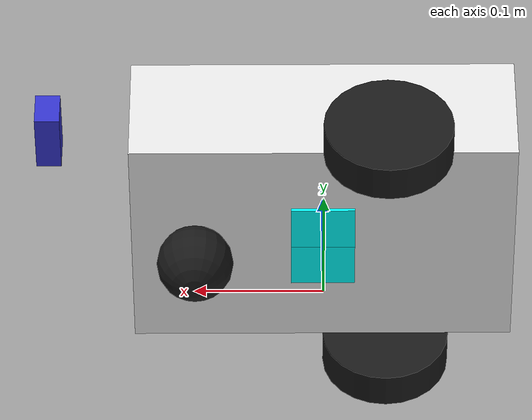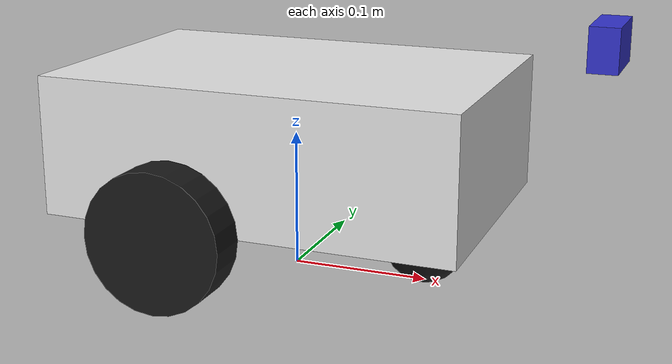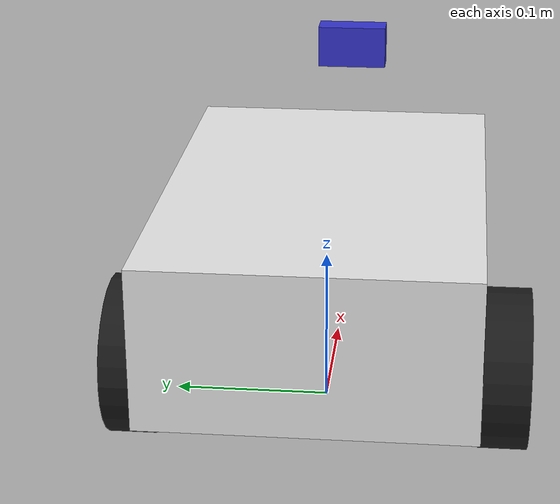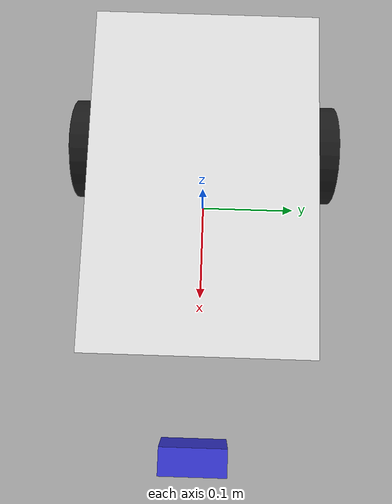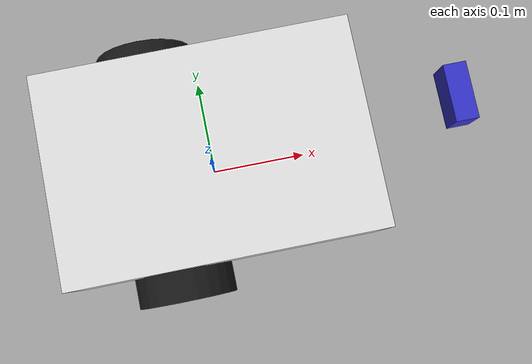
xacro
<?xml version="1.0"?>
<robot xmlns:xacro="http://www.ros.org/wiki/xacro" name="weeder">

  <!-- Materials -->
  <material name="black">
    <color rgba="0.1 0.1 0.1 1"/>
  </material>
  <material name="white">
    <color rgba="0.9 0.9 0.9 1"/>
  </material>
  <material name="blue">
    <color rgba="0.2 0.2 0.8 1"/>
  </material>
  <material name="cyan">
    <color rgba="0.0 1.0 1.0 1"/>
  </material>
  <material name="red">
    <color rgba="0.8 0.1 0.1 1"/>
  </material>

  <!-- Base Link (Chassis) -->
  <link name="base_footprint"/>

  <joint name="base_joint" type="fixed">
    <parent link="base_footprint"/>
    <child link="base_link"/>
    <origin xyz="0 0 0.05" rpy="0 0 0"/>
  </joint>

  <link name="base_link">
    <visual>
      <origin xyz="0 0 0.05" rpy="0 0 0"/>
      <geometry>
        <box size="0.3 0.2 0.1"/>
      </geometry>
      <material name="white"/>
    </visual>
    <collision>
      <origin xyz="0 0 0.05" rpy="0 0 0"/>
      <geometry>
        <box size="0.3 0.2 0.1"/>
      </geometry>
    </collision>
    <inertial>
      <mass value="2.0"/>
      <origin xyz="0 0 0.05" rpy="0 0 0"/>
      <inertia ixx="0.008" ixy="0.0" ixz="0.0" iyy="0.016" iyz="0.0" izz="0.021"/>
    </inertial>
  </link>

  <!-- Drive Wheels -->
  <xacro:macro name="wheel" params="prefix y_reflect">
    <link name="${prefix}_wheel">
      <visual>
        <origin xyz="0 0 0" rpy="1.5708 0 0"/>
        <geometry>
          <cylinder radius="0.05" length="0.03"/>
        </geometry>
        <material name="black"/>
      </visual>
      <collision>
        <origin xyz="0 0 0" rpy="1.5708 0 0"/>
        <geometry>
          <cylinder radius="0.05" length="0.03"/>
        </geometry>
      </collision>
      <inertial>
        <mass value="0.2"/>
        <origin xyz="0 0 0" rpy="1.5708 0 0"/>
        <inertia ixx="0.00014" ixy="0.0" ixz="0.0" iyy="0.00014" iyz="0.0" izz="0.00025"/>
      </inertial>
    </link>

    <joint name="${prefix}_wheel_joint" type="continuous">
      <parent link="base_link"/>
      <child link="${prefix}_wheel"/>
      <origin xyz="-0.05 ${y_reflect * 0.115} 0" rpy="0 0 0"/>
      <axis xyz="0 1 0"/>
    </joint>
  </xacro:macro>

  <xacro:wheel prefix="left" y_reflect="1" />
  <xacro:wheel prefix="right" y_reflect="-1" />

  <!-- Caster Wheel -->
  <link name="caster_wheel">
    <visual>
      <origin xyz="0 0 0" rpy="0 0 0"/>
      <geometry>
        <sphere radius="0.03"/>
      </geometry>
      <material name="black"/>
    </visual>
    <collision>
      <origin xyz="0 0 0" rpy="0 0 0"/>
      <geometry>
        <sphere radius="0.03"/>
      </geometry>
    </collision>
    <inertial>
      <mass value="0.1"/>
      <origin xyz="0 0 0" rpy="0 0 0"/>
      <inertia ixx="3.6e-5" ixy="0.0" ixz="0.0" iyy="3.6e-5" iyz="0.0" izz="3.6e-5"/>
    </inertial>
  </link>

  <joint name="caster_wheel_joint" type="fixed">
    <parent link="base_link"/>
    <child link="caster_wheel"/>
    <origin xyz="0.1 0 -0.02" rpy="0 0 0"/>
  </joint>

  <!-- Downward-facing Camera - mounted on top center pointing down -->
  <link name="camera_link">
    <visual>
      <origin xyz="0 0 0" rpy="0 0 0"/>
      <geometry>
        <box size="0.03 0.05 0.02"/>
      </geometry>
      <material name="blue"/>
    </visual>
    <collision>
      <origin xyz="0 0 0" rpy="0 0 0"/>
      <geometry>
        <box size="0.03 0.05 0.02"/>
      </geometry>
    </collision>
    <inertial>
      <mass value="0.05"/>
      <origin xyz="0 0 0" rpy="0 0 0"/>
      <inertia ixx="1e-6" ixy="0.0" ixz="0.0" iyy="1e-6" iyz="0.0" izz="1e-6"/>
    </inertial>
  </link>

  <!-- camera cantilevered past front of chassis, pointing straight down -->
  <joint name="camera_joint" type="fixed">
    <parent link="base_link"/>
    <child link="camera_link"/>
    <origin xyz="0.22 0 0.13" rpy="0 1.5708 0"/>
  </joint>

  <link name="camera_link_optical"/>
  <joint name="camera_optical_joint" type="fixed">
    <parent link="camera_link"/>
    <child link="camera_link_optical"/>
    <origin xyz="0 0 0" rpy="-1.5708 0 -1.5708"/>
  </joint>

  <!-- LED Matrices - mounted side by side on front underside -->
  <link name="led_matrix_left">
    <visual>
      <origin xyz="0 0 0" rpy="0 0 0"/>
      <geometry>
        <box size="0.05 0.04 0.005"/>
      </geometry>
      <material name="cyan"/>
    </visual>
  </link>
  <joint name="led_matrix_left_joint" type="fixed">
    <parent link="base_link"/>
    <child link="led_matrix_left"/>
    <origin xyz="0.0 0.02 0.0" rpy="0 0 0"/>
  </joint>

  <link name="led_matrix_right">
    <visual>
      <origin xyz="0 0 0" rpy="0 0 0"/>
      <geometry>
        <box size="0.05 0.04 0.005"/>
      </geometry>
      <material name="cyan"/>
    </visual>
  </link>
  <joint name="led_matrix_right_joint" type="fixed">
    <parent link="base_link"/>
    <child link="led_matrix_right"/>
    <origin xyz="0.0 -0.02 0.0" rpy="0 0 0"/>
  </joint>

  <!-- Include Gazebo Plugins -->
  <xacro:include filename="gazebo.xacro" />

</robot>
